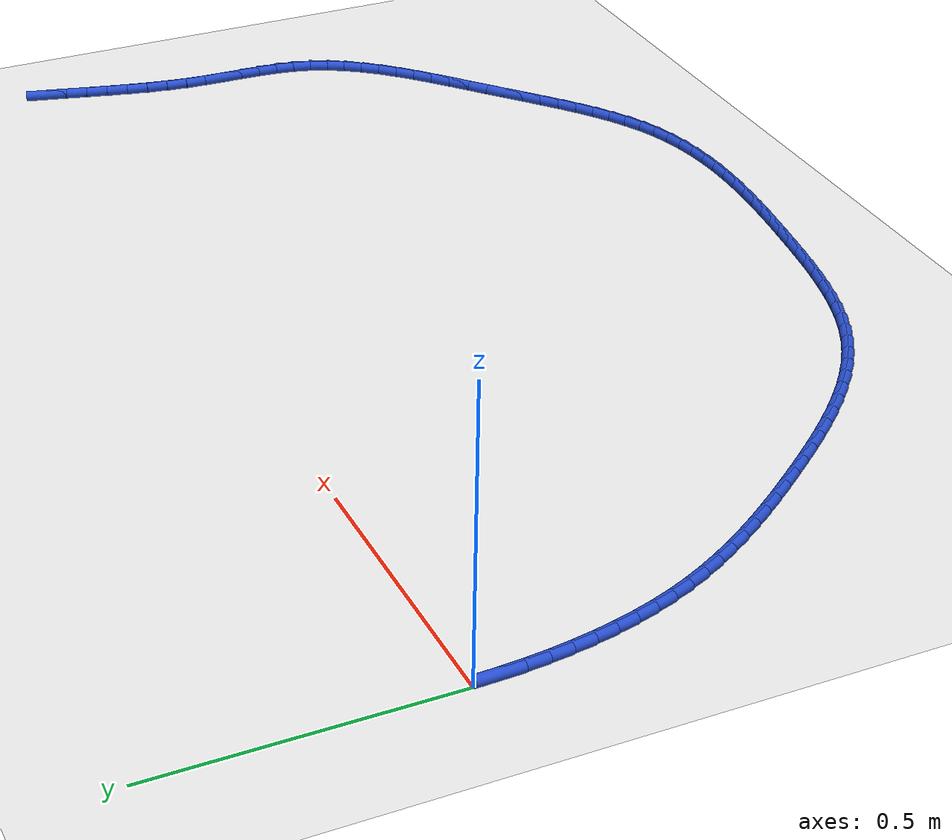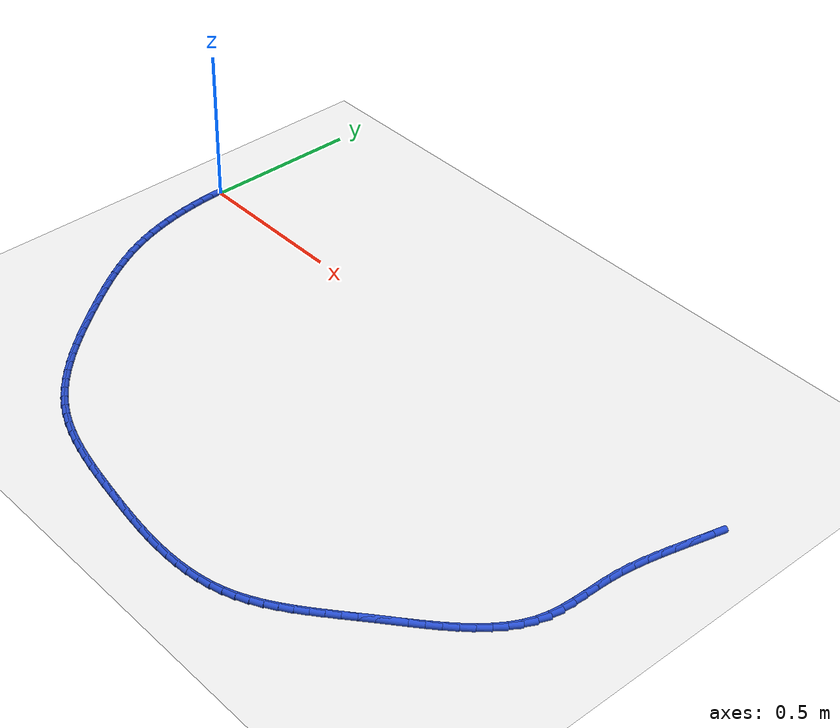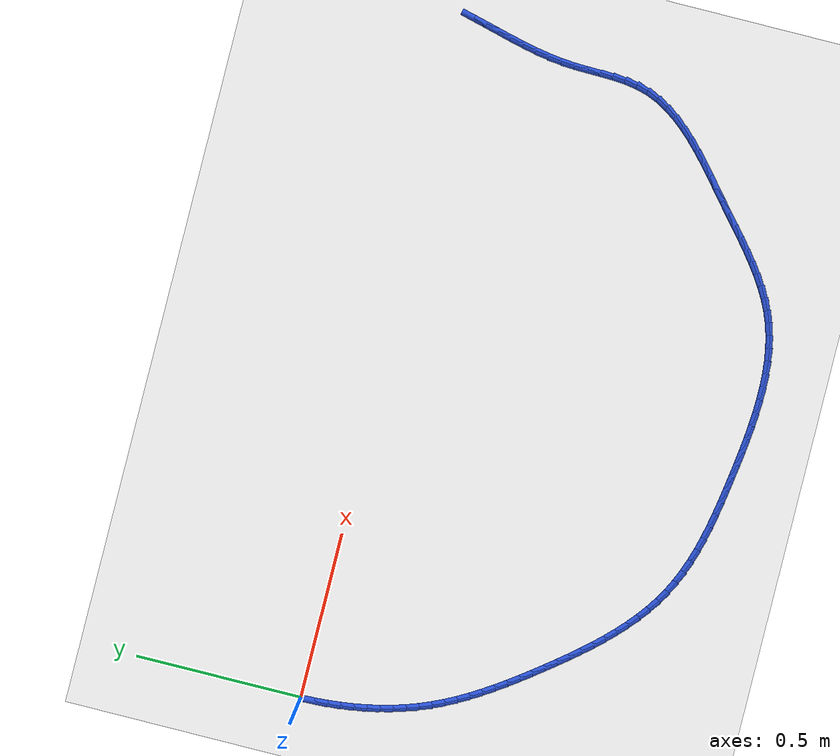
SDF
<sdf version="1.6">
 <world name="default">
  <model name="ground_plane">
   <static>1</static>
   <link name="link">
    <collision name="collision">
     <geometry><plane><normal>0 0 1</normal><size>100 100</size></plane></geometry>
     <surface><friction><ode><mu>100</mu><mu2>50</mu2></ode></friction></surface>
    </collision>
    <visual name="visual">
     <cast_shadows>0</cast_shadows>
     <geometry><plane><normal>0 0 1</normal><size>100 100</size></plane></geometry>
     <material>
      <script><uri>file://media/materials/scripts/gazebo.material</uri><name>Gazebo/WhiteGlow</name></script>
     </material>
    </visual>
   </link>
  </model>
  <model name="line">
   <link name="link_84">
    <pose>2.0732877310090023 -0.002833022383171315 0.01 0 1.57 1.3240365172523032</pose>
    <collision name="collision">
     <geometry><cylinder><radius>0.01</radius><length>0.08</length></cylinder></geometry>
    </collision>
    <visual name="visual">
     <material>
      <script><name>Gazebo/Blue</name><uri>file://media/materials/scripts/gazebo.material</uri></script>
     </material>
     <geometry><cylinder><radius>0.01</radius><length>0.08</length></cylinder></geometry>
    </visual>
   </link>
   <link name="link_85">
    <pose>2.063362151256456 -0.042236925682474405 0.01 0 1.57 1.3186544979273631</pose>
    <collision name="collision">
     <geometry><cylinder><radius>0.01</radius><length>0.08</length></cylinder></geometry>
    </collision>
    <visual name="visual">
     <material>
      <script><name>Gazebo/Blue</name><uri>file://media/materials/scripts/gazebo.material</uri></script>
     </material>
     <geometry><cylinder><radius>0.01</radius><length>0.08</length></cylinder></geometry>
    </visual>
   </link>
   <link name="link_86">
    <pose>2.0531241825197912 -0.08197679067456184 0.01 0 1.57 1.3229760920995042</pose>
    <collision name="collision">
     <geometry><cylinder><radius>0.01</radius><length>0.08</length></cylinder></geometry>
    </collision>
    <visual name="visual">
     <material>
      <script><name>Gazebo/Blue</name><uri>file://media/materials/scripts/gazebo.material</uri></script>
     </material>
     <geometry><cylinder><radius>0.01</radius><length>0.08</length></cylinder></geometry>
    </visual>
   </link>
   <link name="link_87">
    <pose>2.0429988126330025 -0.12199464259582422 0.01 0 1.57 1.3368805387512546</pose>
    <collision name="collision">
     <geometry><cylinder><radius>0.01</radius><length>0.08</length></cylinder></geometry>
    </collision>
    <visual name="visual">
     <material>
      <script><name>Gazebo/Blue</name><uri>file://media/materials/scripts/gazebo.material</uri></script>
     </material>
     <geometry><cylinder><radius>0.01</radius><length>0.08</length></cylinder></geometry>
    </visual>
   </link>
   <link name="link_88">
    <pose>2.033411029430083 -0.1622325066826519 0.01 0 1.57 1.360458365074663</pose>
    <collision name="collision">
     <geometry><cylinder><radius>0.01</radius><length>0.08</length></cylinder></geometry>
    </collision>
    <visual name="visual">
     <material>
      <script><name>Gazebo/Blue</name><uri>file://media/materials/scripts/gazebo.material</uri></script>
     </material>
     <geometry><cylinder><radius>0.01</radius><length>0.08</length></cylinder></geometry>
    </visual>
   </link>
   <link name="link_89">
    <pose>2.0247858207450258 -0.20263240817143618 0.01 0 1.57 1.3939727336642374</pose>
    <collision name="collision">
     <geometry><cylinder><radius>0.01</radius><length>0.08</length></cylinder></geometry>
    </collision>
    <visual name="visual">
     <material>
      <script><name>Gazebo/Blue</name><uri>file://media/materials/scripts/gazebo.material</uri></script>
     </material>
     <geometry><cylinder><radius>0.01</radius><length>0.08</length></cylinder></geometry>
    </visual>
   </link>
   <link name="link_90">
    <pose>2.017548174411825 -0.24313637229856594 0.01 0 1.57 1.43779844050988</pose>
    <collision name="collision">
     <geometry><cylinder><radius>0.01</radius><length>0.08</length></cylinder></geometry>
    </collision>
    <visual name="visual">
     <material>
      <script><name>Gazebo/Blue</name><uri>file://media/materials/scripts/gazebo.material</uri></script>
     </material>
     <geometry><cylinder><radius>0.01</radius><length>0.08</length></cylinder></geometry>
    </visual>
   </link>
   <link name="link_91">
    <pose>2.012123078264474 -0.28368642430043256 0.01 0 1.57 1.4912970462471276</pose>
    <collision name="collision">
     <geometry><cylinder><radius>0.01</radius><length>0.08</length></cylinder></geometry>
    </collision>
    <visual name="visual">
     <material>
      <script><name>Gazebo/Blue</name><uri>file://media/materials/scripts/gazebo.material</uri></script>
     </material>
     <geometry><cylinder><radius>0.01</radius><length>0.08</length></cylinder></geometry>
    </visual>
   </link>
   <link name="link_92">
    <pose>2.008893961093956 -0.324219011020749 0.01 0 1.57 1.535166261567217</pose>
    <collision name="collision">
     <geometry><cylinder><radius>0.01</radius><length>0.08</length></cylinder></geometry>
    </collision>
    <visual name="visual">
     <material>
      <script><name>Gazebo/Blue</name><uri>file://media/materials/scripts/gazebo.material</uri></script>
     </material>
     <geometry><cylinder><radius>0.01</radius><length>0.08</length></cylinder></geometry>
    </visual>
   </link>
   <link name="link_93">
    <pose>2.0074558311229325 -0.36456475108375175 0.01 0 1.57 1.5518130688082306</pose>
    <collision name="collision">
     <geometry><cylinder><radius>0.01</radius><length>0.08</length></cylinder></geometry>
    </collision>
    <visual name="visual">
     <material>
      <script><name>Gazebo/Blue</name><uri>file://media/materials/scripts/gazebo.material</uri></script>
     </material>
     <geometry><cylinder><radius>0.01</radius><length>0.08</length></cylinder></geometry>
    </visual>
   </link>
   <link name="link_94">
    <pose>2.0066984060559636 -0.4044595932854872 0.01 0 1.57 1.539872616497881</pose>
    <collision name="collision">
     <geometry><cylinder><radius>0.01</radius><length>0.08</length></cylinder></geometry>
    </collision>
    <visual name="visual">
     <material>
      <script><name>Gazebo/Blue</name><uri>file://media/materials/scripts/gazebo.material</uri></script>
     </material>
     <geometry><cylinder><radius>0.01</radius><length>0.08</length></cylinder></geometry>
    </visual>
   </link>
   <link name="link_95">
    <pose>2.005486535296399 -0.4436361483964026 0.01 0 1.57 1.497573124553418</pose>
    <collision name="collision">
     <geometry><cylinder><radius>0.01</radius><length>0.08</length></cylinder></geometry>
    </collision>
    <visual name="visual">
     <material>
      <script><name>Gazebo/Blue</name><uri>file://media/materials/scripts/gazebo.material</uri></script>
     </material>
     <geometry><cylinder><radius>0.01</radius><length>0.08</length></cylinder></geometry>
    </visual>
   </link>
   <link name="link_96">
    <pose>2.002685068247591 -0.4818270271869477 0.01 0 1.57 1.4222892040902089</pose>
    <collision name="collision">
     <geometry><cylinder><radius>0.01</radius><length>0.08</length></cylinder></geometry>
    </collision>
    <visual name="visual">
     <material>
      <script><name>Gazebo/Blue</name><uri>file://media/materials/scripts/gazebo.material</uri></script>
     </material>
     <geometry><cylinder><radius>0.01</radius><length>0.08</length></cylinder></geometry>
    </visual>
   </link>
   <link name="link_97">
    <pose>1.9971588543128902 -0.5187648404275712 0.01 0 1.57 1.311973981122183</pose>
    <collision name="collision">
     <geometry><cylinder><radius>0.01</radius><length>0.08</length></cylinder></geometry>
    </collision>
    <visual name="visual">
     <material>
      <script><name>Gazebo/Blue</name><uri>file://media/materials/scripts/gazebo.material</uri></script>
     </material>
     <geometry><cylinder><radius>0.01</radius><length>0.08</length></cylinder></geometry>
    </visual>
   </link>
   <link name="link_98">
    <pose>1.9877811232567795 -0.5541844570091679 0.01 0 1.57 1.1837734969037585</pose>
    <collision name="collision">
     <geometry><cylinder><radius>0.01</radius><length>0.08</length></cylinder></geometry>
    </collision>
    <visual name="visual">
     <material>
      <script><name>Gazebo/Blue</name><uri>file://media/materials/scripts/gazebo.material</uri></script>
     </material>
     <geometry><cylinder><radius>0.01</radius><length>0.08</length></cylinder></geometry>
    </visual>
   </link>
   <link name="link_99">
    <pose>1.9740076975651675 -0.5879777276656915 0.01 0 1.57 1.0682449131188485</pose>
    <collision name="collision">
     <geometry><cylinder><radius>0.01</radius><length>0.08</length></cylinder></geometry>
    </collision>
    <visual name="visual">
     <material>
      <script><name>Gazebo/Blue</name><uri>file://media/materials/scripts/gazebo.material</uri></script>
     </material>
     <geometry><cylinder><radius>0.01</radius><length>0.08</length></cylinder></geometry>
    </visual>
   </link>
   <link name="link_100">
    <pose>1.9562465436832828 -0.6202930619724475 0.01 0 1.57 0.9699566505959543</pose>
    <collision name="collision">
     <geometry><cylinder><radius>0.01</radius><length>0.08</length></cylinder></geometry>
    </collision>
    <visual name="visual">
     <material>
      <script><name>Gazebo/Blue</name><uri>file://media/materials/scripts/gazebo.material</uri></script>
     </material>
     <geometry><cylinder><radius>0.01</radius><length>0.08</length></cylinder></geometry>
    </visual>
   </link>
   <link name="link_101">
    <pose>1.9349935564130705 -0.6513025621376708 0.01 0 1.57 0.8889867673475176</pose>
    <collision name="collision">
     <geometry><cylinder><radius>0.01</radius><length>0.08</length></cylinder></geometry>
    </collision>
    <visual name="visual">
     <material>
      <script><name>Gazebo/Blue</name><uri>file://media/materials/scripts/gazebo.material</uri></script>
     </material>
     <geometry><cylinder><radius>0.01</radius><length>0.08</length></cylinder></geometry>
    </visual>
   </link>
   <link name="link_102">
    <pose>1.910744630556473 -0.6811783303695942 0.01 0 1.57 0.8242762989675925</pose>
    <collision name="collision">
     <geometry><cylinder><radius>0.01</radius><length>0.08</length></cylinder></geometry>
    </collision>
    <visual name="visual">
     <material>
      <script><name>Gazebo/Blue</name><uri>file://media/materials/scripts/gazebo.material</uri></script>
     </material>
     <geometry><cylinder><radius>0.01</radius><length>0.08</length></cylinder></geometry>
    </visual>
   </link>
   <link name="link_103">
    <pose>1.883995660915436 -0.710092468876452 0.01 0 1.57 0.7743484597936146</pose>
    <collision name="collision">
     <geometry><cylinder><radius>0.01</radius><length>0.08</length></cylinder></geometry>
    </collision>
    <visual name="visual">
     <material>
      <script><name>Gazebo/Blue</name><uri>file://media/materials/scripts/gazebo.material</uri></script>
     </material>
     <geometry><cylinder><radius>0.01</radius><length>0.08</length></cylinder></geometry>
    </visual>
   </link>
   <link name="link_104">
    <pose>1.8552425422919014 -0.7382170798664774 0.01 0 1.57 0.7377580065491006</pose>
    <collision name="collision">
     <geometry><cylinder><radius>0.01</radius><length>0.08</length></cylinder></geometry>
    </collision>
    <visual name="visual">
     <material>
      <script><name>Gazebo/Blue</name><uri>file://media/materials/scripts/gazebo.material</uri></script>
     </material>
     <geometry><cylinder><radius>0.01</radius><length>0.08</length></cylinder></geometry>
    </visual>
   </link>
   <link name="link_105">
    <pose>1.8249811694878153 -0.7657242655479037 0.01 0 1.57 0.7133225518185794</pose>
    <collision name="collision">
     <geometry><cylinder><radius>0.01</radius><length>0.08</length></cylinder></geometry>
    </collision>
    <visual name="visual">
     <material>
      <script><name>Gazebo/Blue</name><uri>file://media/materials/scripts/gazebo.material</uri></script>
     </material>
     <geometry><cylinder><radius>0.01</radius><length>0.08</length></cylinder></geometry>
    </visual>
   </link>
   <link name="link_106">
    <pose>1.7937074373051205 -0.7927861281289643 0.01 0 1.57 0.7002231363831721</pose>
    <collision name="collision">
     <geometry><cylinder><radius>0.01</radius><length>0.08</length></cylinder></geometry>
    </collision>
    <visual name="visual">
     <material>
      <script><name>Gazebo/Blue</name><uri>file://media/materials/scripts/gazebo.material</uri></script>
     </material>
     <geometry><cylinder><radius>0.01</radius><length>0.08</length></cylinder></geometry>
    </visual>
   </link>
   <link name="link_107">
    <pose>1.7619172405457613 -0.8195747698178935 0.01 0 1.57 0.6980416809096978</pose>
    <collision name="collision">
     <geometry><cylinder><radius>0.01</radius><length>0.08</length></cylinder></geometry>
    </collision>
    <visual name="visual">
     <material>
      <script><name>Gazebo/Blue</name><uri>file://media/materials/scripts/gazebo.material</uri></script>
     </material>
     <geometry><cylinder><radius>0.01</radius><length>0.08</length></cylinder></geometry>
    </visual>
   </link>
   <link name="link_108">
    <pose>1.7301064740116825 -0.8462622928229242 0.01 0 1.57 0.7048841720123856</pose>
    <collision name="collision">
     <geometry><cylinder><radius>0.01</radius><length>0.08</length></cylinder></geometry>
    </collision>
    <visual name="visual">
     <material>
      <script><name>Gazebo/Blue</name><uri>file://media/materials/scripts/gazebo.material</uri></script>
     </material>
     <geometry><cylinder><radius>0.01</radius><length>0.08</length></cylinder></geometry>
    </visual>
   </link>
   <link name="link_109">
    <pose>1.6987061042256055 -0.872973713953395 0.01 0 1.57 0.708212111800988</pose>
    <collision name="collision">
     <geometry><cylinder><radius>0.01</radius><length>0.08</length></cylinder></geometry>
    </collision>
    <visual name="visual">
     <material>
      <script><name>Gazebo/Blue</name><uri>file://media/materials/scripts/gazebo.material</uri></script>
     </material>
     <geometry><cylinder><radius>0.01</radius><length>0.08</length></cylinder></geometry>
    </visual>
   </link>
   <link name="link_110">
    <pose>1.6677115626940346 -0.8995182039771713 0.01 0 1.57 0.7026099904936385</pose>
    <collision name="collision">
     <geometry><cylinder><radius>0.01</radius><length>0.08</length></cylinder></geometry>
    </collision>
    <visual name="visual">
     <material>
      <script><name>Gazebo/Blue</name><uri>file://media/materials/scripts/gazebo.material</uri></script>
     </material>
     <geometry><cylinder><radius>0.01</radius><length>0.08</length></cylinder></geometry>
    </visual>
   </link>
   <link name="link_111">
    <pose>1.6369391617997764 -0.9255750380990387 0.01 0 1.57 0.6877073226427701</pose>
    <collision name="collision">
     <geometry><cylinder><radius>0.01</radius><length>0.08</length></cylinder></geometry>
    </collision>
    <visual name="visual">
     <material>
      <script><name>Gazebo/Blue</name><uri>file://media/materials/scripts/gazebo.material</uri></script>
     </material>
     <geometry><cylinder><radius>0.01</radius><length>0.08</length></cylinder></geometry>
    </visual>
   </link>
   <link name="link_112">
    <pose>1.6062046617298567 -0.9508230910764173 0.01 0 1.57 0.6630519780283114</pose>
    <collision name="collision">
     <geometry><cylinder><radius>0.01</radius><length>0.08</length></cylinder></geometry>
    </collision>
    <visual name="visual">
     <material>
      <script><name>Gazebo/Blue</name><uri>file://media/materials/scripts/gazebo.material</uri></script>
     </material>
     <geometry><cylinder><radius>0.01</radius><length>0.08</length></cylinder></geometry>
    </visual>
   </link>
   <link name="link_113">
    <pose>1.5753238226713033 -0.9749412376667261 0.01 0 1.57 0.6281233237968963</pose>
    <collision name="collision">
     <geometry><cylinder><radius>0.01</radius><length>0.08</length></cylinder></geometry>
    </collision>
    <visual name="visual">
     <material>
      <script><name>Gazebo/Blue</name><uri>file://media/materials/scripts/gazebo.material</uri></script>
     </material>
     <geometry><cylinder><radius>0.01</radius><length>0.08</length></cylinder></geometry>
    </visual>
   </link>
   <link name="link_114">
    <pose>1.5441124048111448 -0.9976083526273856 0.01 0 1.57 0.5823984686956617</pose>
    <collision name="collision">
     <geometry><cylinder><radius>0.01</radius><length>0.08</length></cylinder></geometry>
    </collision>
    <visual name="visual">
     <material>
      <script><name>Gazebo/Blue</name><uri>file://media/materials/scripts/gazebo.material</uri></script>
     </material>
     <geometry><cylinder><radius>0.01</radius><length>0.08</length></cylinder></geometry>
    </visual>
   </link>
   <link name="link_115">
    <pose>1.512386168336408 -1.0185033107158155 0.01 0 1.57 0.5254685145553025</pose>
    <collision name="collision">
     <geometry><cylinder><radius>0.01</radius><length>0.08</length></cylinder></geometry>
    </collision>
    <visual name="visual">
     <material>
      <script><name>Gazebo/Blue</name><uri>file://media/materials/scripts/gazebo.material</uri></script>
     </material>
     <geometry><cylinder><radius>0.01</radius><length>0.08</length></cylinder></geometry>
    </visual>
   </link>
   <link name="link_116">
    <pose>1.4799608734341212 -1.037304986689434 0.01 0 1.57 0.45721363456293435</pose>
    <collision name="collision">
     <geometry><cylinder><radius>0.01</radius><length>0.08</length></cylinder></geometry>
    </collision>
    <visual name="visual">
     <material>
      <script><name>Gazebo/Blue</name><uri>file://media/materials/scripts/gazebo.material</uri></script>
     </material>
     <geometry><cylinder><radius>0.01</radius><length>0.08</length></cylinder></geometry>
    </visual>
   </link>
   <link name="link_117">
    <pose>1.446652280291312 -1.0536922553056622 0.01 0 1.57 0.37829900537733296</pose>
    <collision name="collision">
     <geometry><cylinder><radius>0.01</radius><length>0.08</length></cylinder></geometry>
    </collision>
    <visual name="visual">
     <material>
      <script><name>Gazebo/Blue</name><uri>file://media/materials/scripts/gazebo.material</uri></script>
     </material>
     <geometry><cylinder><radius>0.01</radius><length>0.08</length></cylinder></geometry>
    </visual>
   </link>
   <link name="link_118">
    <pose>1.412281024324226 -1.0673528258278595 0.01 0 1.57 0.29719963356065365</pose>
    <collision name="collision">
     <geometry><cylinder><radius>0.01</radius><length>0.08</length></cylinder></geometry>
    </collision>
    <visual name="visual">
     <material>
      <script><name>Gazebo/Blue</name><uri>file://media/materials/scripts/gazebo.material</uri></script>
     </material>
     <geometry><cylinder><radius>0.01</radius><length>0.08</length></cylinder></geometry>
    </visual>
   </link>
   <link name="link_119">
    <pose>1.3768026162848819 -1.0782188179669492 0.01 0 1.57 0.2230106963993187</pose>
    <collision name="collision">
     <geometry><cylinder><radius>0.01</radius><length>0.08</length></cylinder></geometry>
    </collision>
    <visual name="visual">
     <material>
      <script><name>Gazebo/Blue</name><uri>file://media/materials/scripts/gazebo.material</uri></script>
     </material>
     <geometry><cylinder><radius>0.01</radius><length>0.08</length></cylinder></geometry>
    </visual>
   </link>
   <link name="link_120">
    <pose>1.3403214371170822 -1.0864921222558823 0.01 0 1.57 0.15648712992326655</pose>
    <collision name="collision">
     <geometry><cylinder><radius>0.01</radius><length>0.08</length></cylinder></geometry>
    </collision>
    <visual name="visual">
     <material>
      <script><name>Gazebo/Blue</name><uri>file://media/materials/scripts/gazebo.material</uri></script>
     </material>
     <geometry><cylinder><radius>0.01</radius><length>0.08</length></cylinder></geometry>
    </visual>
   </link>
   <link name="link_121">
    <pose>1.3029495505195128 -1.0923885513101663 0.01 0 1.57 0.09760016672799124</pose>
    <collision name="collision">
     <geometry><cylinder><radius>0.01</radius><length>0.08</length></cylinder></geometry>
    </collision>
    <visual name="visual">
     <material>
      <script><name>Gazebo/Blue</name><uri>file://media/materials/scripts/gazebo.material</uri></script>
     </material>
     <geometry><cylinder><radius>0.01</radius><length>0.08</length></cylinder></geometry>
    </visual>
   </link>
   <link name="link_122">
    <pose>1.2647990201908614 -1.0961239177453102 0.01 0 1.57 0.046084033284451625</pose>
    <collision name="collision">
     <geometry><cylinder><radius>0.01</radius><length>0.08</length></cylinder></geometry>
    </collision>
    <visual name="visual">
     <material>
      <script><name>Gazebo/Blue</name><uri>file://media/materials/scripts/gazebo.material</uri></script>
     </material>
     <geometry><cylinder><radius>0.01</radius><length>0.08</length></cylinder></geometry>
    </visual>
   </link>
   <link name="link_123">
    <pose>1.225981909829814 -1.0979140341768217 0.01 0 1.57 0.0015411858853603584</pose>
    <collision name="collision">
     <geometry><cylinder><radius>0.01</radius><length>0.08</length></cylinder></geometry>
    </collision>
    <visual name="visual">
     <material>
      <script><name>Gazebo/Blue</name><uri>file://media/materials/scripts/gazebo.material</uri></script>
     </material>
     <geometry><cylinder><radius>0.01</radius><length>0.08</length></cylinder></geometry>
    </visual>
   </link>
   <link name="link_124">
    <pose>1.186610283135057 -1.09797471322021 0.01 0 1.57 -0.0364770773981496</pose>
    <collision name="collision">
     <geometry><cylinder><radius>0.01</radius><length>0.08</length></cylinder></geometry>
    </collision>
    <visual name="visual">
     <material>
      <script><name>Gazebo/Blue</name><uri>file://media/materials/scripts/gazebo.material</uri></script>
     </material>
     <geometry><cylinder><radius>0.01</radius><length>0.08</length></cylinder></geometry>
    </visual>
   </link>
   <link name="link_125">
    <pose>1.1467962038052766 -1.0965217674909828 0.01 0 1.57 -0.06841452834494986</pose>
    <collision name="collision">
     <geometry><cylinder><radius>0.01</radius><length>0.08</length></cylinder></geometry>
    </collision>
    <visual name="visual">
     <material>
      <script><name>Gazebo/Blue</name><uri>file://media/materials/scripts/gazebo.material</uri></script>
     </material>
     <geometry><cylinder><radius>0.01</radius><length>0.08</length></cylinder></geometry>
    </visual>
   </link>
   <link name="link_126">
    <pose>1.106651735539159 -1.0937710096046491 0.01 0 1.57 -0.09467380921705981</pose>
    <collision name="collision">
     <geometry><cylinder><radius>0.01</radius><length>0.08</length></cylinder></geometry>
    </collision>
    <visual name="visual">
     <material>
      <script><name>Gazebo/Blue</name><uri>file://media/materials/scripts/gazebo.material</uri></script>
     </material>
     <geometry><cylinder><radius>0.01</radius><length>0.08</length></cylinder></geometry>
    </visual>
   </link>
   <link name="link_127">
    <pose>1.0662889420353912 -1.089938252176717 0.01 0 1.57 -0.11559440856584909</pose>
    <collision name="collision">
     <geometry><cylinder><radius>0.01</radius><length>0.08</length></cylinder></geometry>
    </collision>
    <visual name="visual">
     <material>
      <script><name>Gazebo/Blue</name><uri>file://media/materials/scripts/gazebo.material</uri></script>
     </material>
     <geometry><cylinder><radius>0.01</radius><length>0.08</length></cylinder></geometry>
    </visual>
   </link>
   <link name="link_128">
    <pose>1.02581988699266 -1.085239307822695 0.01 0 1.57 -0.13143969165751426</pose>
    <collision name="collision">
     <geometry><cylinder><radius>0.01</radius><length>0.08</length></cylinder></geometry>
    </collision>
    <visual name="visual">
     <material>
      <script><name>Gazebo/Blue</name><uri>file://media/materials/scripts/gazebo.material</uri></script>
     </material>
     <geometry><cylinder><radius>0.01</radius><length>0.08</length></cylinder></geometry>
    </visual>
   </link>
   <link name="link_129">
    <pose>0.9853566341096512 -1.079889989158091 0.01 0 1.57 -0.14238898624802543</pose>
    <collision name="collision">
     <geometry><cylinder><radius>0.01</radius><length>0.08</length></cylinder></geometry>
    </collision>
    <visual name="visual">
     <material>
      <script><name>Gazebo/Blue</name><uri>file://media/materials/scripts/gazebo.material</uri></script>
     </material>
     <geometry><cylinder><radius>0.01</radius><length>0.08</length></cylinder></geometry>
    </visual>
   </link>
   <link name="link_130">
    <pose>0.9450112470850519 -1.0741061087984143 0.01 0 1.57 -0.14940088666014317</pose>
    <collision name="collision">
     <geometry><cylinder><radius>0.01</radius><length>0.08</length></cylinder></geometry>
    </collision>
    <visual name="visual">
     <material>
      <script><name>Gazebo/Blue</name><uri>file://media/materials/scripts/gazebo.material</uri></script>
     </material>
     <geometry><cylinder><radius>0.01</radius><length>0.08</length></cylinder></geometry>
    </visual>
   </link>
   <link name="link_131">
    <pose>0.9048945368972756 -1.068067642281353 0.01 0 1.57 -0.15915915887786364</pose>
    <collision name="collision">
     <geometry><cylinder><radius>0.01</radius><length>0.08</length></cylinder></geometry>
    </collision>
    <visual name="visual">
     <material>
      <script><name>Gazebo/Blue</name><uri>file://media/materials/scripts/gazebo.material</uri></script>
     </material>
     <geometry><cylinder><radius>0.01</radius><length>0.08</length></cylinder></geometry>
    </visual>
   </link>
   <link name="link_132">
    <pose>0.8651077585826222 -1.0616811944257203 0.01 0 1.57 -0.1748663669154542</pose>
    <collision name="collision">
     <geometry><cylinder><radius>0.01</radius><length>0.08</length></cylinder></geometry>
    </collision>
    <visual name="visual">
     <material>
      <script><name>Gazebo/Blue</name><uri>file://media/materials/scripts/gazebo.material</uri></script>
     </material>
     <geometry><cylinder><radius>0.01</radius><length>0.08</length></cylinder></geometry>
    </visual>
   </link>
   <link name="link_133">
    <pose>0.8257477649055384 -1.054727432470758 0.01 0 1.57 -0.1967468920736733</pose>
    <collision name="collision">
     <geometry><cylinder><radius>0.01</radius><length>0.08</length></cylinder></geometry>
    </collision>
    <visual name="visual">
     <material>
      <script><name>Gazebo/Blue</name><uri>file://media/materials/scripts/gazebo.material</uri></script>
     </material>
     <geometry><cylinder><radius>0.01</radius><length>0.08</length></cylinder></geometry>
    </visual>
   </link>
   <link name="link_134">
    <pose>0.786911385177066 -1.0469863527146104 0.01 0 1.57 -0.22504263370241234</pose>
    <collision name="collision">
     <geometry><cylinder><radius>0.01</radius><length>0.08</length></cylinder></geometry>
    </collision>
    <visual name="visual">
     <material>
      <script><name>Gazebo/Blue</name><uri>file://media/materials/scripts/gazebo.material</uri></script>
     </material>
     <geometry><cylinder><radius>0.01</radius><length>0.08</length></cylinder></geometry>
    </visual>
   </link>
   <link name="link_135">
    <pose>0.7486954487082473 -1.038237951455421 0.01 0 1.57 -0.260006826019972</pose>
    <collision name="collision">
     <geometry><cylinder><radius>0.01</radius><length>0.08</length></cylinder></geometry>
    </collision>
    <visual name="visual">
     <material>
      <script><name>Gazebo/Blue</name><uri>file://media/materials/scripts/gazebo.material</uri></script>
     </material>
     <geometry><cylinder><radius>0.01</radius><length>0.08</length></cylinder></geometry>
    </visual>
   </link>
   <link name="link_136">
    <pose>0.7111967848101233 -1.0282622249913322 0.01 0 1.57 -0.3018695661856194</pose>
    <collision name="collision">
     <geometry><cylinder><radius>0.01</radius><length>0.08</length></cylinder></geometry>
    </collision>
    <visual name="visual">
     <material>
      <script><name>Gazebo/Blue</name><uri>file://media/materials/scripts/gazebo.material</uri></script>
     </material>
     <geometry><cylinder><radius>0.01</radius><length>0.08</length></cylinder></geometry>
    </visual>
   </link>
   <link name="link_137">
    <pose>0.6745122227937369 -1.016839169620488 0.01 0 1.57 -0.3507889465933068</pose>
    <collision name="collision">
     <geometry><cylinder><radius>0.01</radius><length>0.08</length></cylinder></geometry>
    </collision>
    <visual name="visual">
     <material>
      <script><name>Gazebo/Blue</name><uri>file://media/materials/scripts/gazebo.material</uri></script>
     </material>
     <geometry><cylinder><radius>0.01</radius><length>0.08</length></cylinder></geometry>
    </visual>
   </link>
   <link name="link_138">
    <pose>0.63873859197013 -1.0037487816410318 0.01 0 1.57 -0.40678727461697783</pose>
    <collision name="collision">
     <geometry><cylinder><radius>0.01</radius><length>0.08</length></cylinder></geometry>
    </collision>
    <visual name="visual">
     <material>
      <script><name>Gazebo/Blue</name><uri>file://media/materials/scripts/gazebo.material</uri></script>
     </material>
     <geometry><cylinder><radius>0.01</radius><length>0.08</length></cylinder></geometry>
    </visual>
   </link>
   <link name="link_139">
    <pose>0.6039727216503443 -0.9887710573511067 0.01 0 1.57 -0.4696759877989372</pose>
    <collision name="collision">
     <geometry><cylinder><radius>0.01</radius><length>0.08</length></cylinder></geometry>
    </collision>
    <visual name="visual">
     <material>
      <script><name>Gazebo/Blue</name><uri>file://media/materials/scripts/gazebo.material</uri></script>
     </material>
     <geometry><cylinder><radius>0.01</radius><length>0.08</length></cylinder></geometry>
    </visual>
   </link>
   <link name="link_140">
    <pose>0.5703114410111614 -0.9716859933802482 0.01 0 1.57 -0.5368962757555107</pose>
    <collision name="collision">
     <geometry><cylinder><radius>0.01</radius><length>0.08</length></cylinder></geometry>
    </collision>
    <visual name="visual">
     <material>
      <script><name>Gazebo/Blue</name><uri>file://media/materials/scripts/gazebo.material</uri></script>
     </material>
     <geometry><cylinder><radius>0.01</radius><length>0.08</length></cylinder></geometry>
    </visual>
   </link>
   <link name="link_141">
    <pose>0.5378216471930634 -0.9523474669524886 0.01 0 1.57 -0.5999771993615607</pose>
    <collision name="collision">
     <geometry><cylinder><radius>0.01</radius><length>0.08</length></cylinder></geometry>
    </collision>
    <visual name="visual">
     <material>
      <script><name>Gazebo/Blue</name><uri>file://media/materials/scripts/gazebo.material</uri></script>
     </material>
     <geometry><cylinder><radius>0.01</radius><length>0.08</length></cylinder></geometry>
    </visual>
   </link>
   <link name="link_142">
    <pose>0.5064563812264615 -0.9308903838532023 0.01 0 1.57 -0.6568318723783236</pose>
    <collision name="collision">
     <geometry><cylinder><radius>0.01</radius><length>0.08</length></cylinder></geometry>
    </collision>
    <visual name="visual">
     <material>
      <script><name>Gazebo/Blue</name><uri>file://media/materials/scripts/gazebo.material</uri></script>
     </material>
     <geometry><cylinder><radius>0.01</radius><length>0.08</length></cylinder></geometry>
    </visual>
   </link>
   <link name="link_143">
    <pose>0.47614161680048145 -0.9075164595978381 0.01 0 1.57 -0.7074844258914516</pose>
    <collision name="collision">
     <geometry><cylinder><radius>0.01</radius><length>0.08</length></cylinder></geometry>
    </collision>
    <visual name="visual">
     <material>
      <script><name>Gazebo/Blue</name><uri>file://media/materials/scripts/gazebo.material</uri></script>
     </material>
     <geometry><cylinder><radius>0.01</radius><length>0.08</length></cylinder></geometry>
    </visual>
   </link>
   <link name="link_144">
    <pose>0.4468033276042472 -0.8824274097018447 0.01 0 1.57 -0.7520994863370226</pose>
    <collision name="collision">
     <geometry><cylinder><radius>0.01</radius><length>0.08</length></cylinder></geometry>
    </collision>
    <visual name="visual">
     <material>
      <script><name>Gazebo/Blue</name><uri>file://media/materials/scripts/gazebo.material</uri></script>
     </material>
     <geometry><cylinder><radius>0.01</radius><length>0.08</length></cylinder></geometry>
    </visual>
   </link>
   <link name="link_145">
    <pose>0.41836748732688345 -0.8558249496806718 0.01 0 1.57 -0.7909227519163463</pose>
    <collision name="collision">
     <geometry><cylinder><radius>0.01</radius><length>0.08</length></cylinder></geometry>
    </collision>
    <visual name="visual">
     <material>
      <script><name>Gazebo/Blue</name><uri>file://media/materials/scripts/gazebo.material</uri></script>
     </material>
     <geometry><cylinder><radius>0.01</radius><length>0.08</length></cylinder></geometry>
    </visual>
   </link>
   <link name="link_146">
    <pose>0.3907600696575145 -0.8279107950497676 0.01 0 1.57 -0.8242337259484697</pose>
    <collision name="collision">
     <geometry><cylinder><radius>0.01</radius><length>0.08</length></cylinder></geometry>
    </collision>
    <visual name="visual">
     <material>
      <script><name>Gazebo/Blue</name><uri>file://media/materials/scripts/gazebo.material</uri></script>
     </material>
     <geometry><cylinder><radius>0.01</radius><length>0.08</length></cylinder></geometry>
    </visual>
   </link>
   <link name="link_147">
    <pose>0.3639070482852644 -0.7988866613245812 0.01 0 1.57 -0.8523107348987696</pose>
    <collision name="collision">
     <geometry><cylinder><radius>0.01</radius><length>0.08</length></cylinder></geometry>
    </collision>
    <visual name="visual">
     <material>
      <script><name>Gazebo/Blue</name><uri>file://media/materials/scripts/gazebo.material</uri></script>
     </material>
     <geometry><cylinder><radius>0.01</radius><length>0.08</length></cylinder></geometry>
    </visual>
   </link>
   <link name="link_148">
    <pose>0.3377343968992588 -0.7689542640205623 0.01 0 1.57 -0.8754063275600069</pose>
    <collision name="collision">
     <geometry><cylinder><radius>0.01</radius><length>0.08</length></cylinder></geometry>
    </collision>
    <visual name="visual">
     <material>
      <script><name>Gazebo/Blue</name><uri>file://media/materials/scripts/gazebo.material</uri></script>
     </material>
     <geometry><cylinder><radius>0.01</radius><length>0.08</length></cylinder></geometry>
    </visual>
   </link>
   <link name="link_149">
    <pose>0.31216808918862166 -0.7383153186531597 0.01 0 1.57 -0.8937304765409064</pose>
    <collision name="collision">
     <geometry><cylinder><radius>0.01</radius><length>0.08</length></cylinder></geometry>
    </collision>
    <visual name="visual">
     <material>
      <script><name>Gazebo/Blue</name><uri>file://media/materials/scripts/gazebo.material</uri></script>
     </material>
     <geometry><cylinder><radius>0.01</radius><length>0.08</length></cylinder></geometry>
    </visual>
   </link>
   <link name="link_150">
    <pose>0.2871340988424777 -0.7071715407378221 0.01 0 1.57 -0.907439076839174</pose>
    <collision name="collision">
     <geometry><cylinder><radius>0.01</radius><length>0.08</length></cylinder></geometry>
    </collision>
    <visual name="visual">
     <material>
      <script><name>Gazebo/Blue</name><uri>file://media/materials/scripts/gazebo.material</uri></script>
     </material>
     <geometry><cylinder><radius>0.01</radius><length>0.08</length></cylinder></geometry>
    </visual>
   </link>
   <link name="link_151">
    <pose>0.2625583995499512 -0.6757246457899988 0.01 0 1.57 -0.9177808079445519</pose>
    <collision name="collision">
     <geometry><cylinder><radius>0.01</radius><length>0.08</length></cylinder></geometry>
    </collision>
    <visual name="visual">
     <material>
      <script><name>Gazebo/Blue</name><uri>file://media/materials/scripts/gazebo.material</uri></script>
     </material>
     <geometry><cylinder><radius>0.01</radius><length>0.08</length></cylinder></geometry>
    </visual>
   </link>
   <link name="link_152">
    <pose>0.23839641048828997 -0.6441392549545676 0.01 0 1.57 -0.930418989539588</pose>
    <collision name="collision">
     <geometry><cylinder><radius>0.01</radius><length>0.08</length></cylinder></geometry>
    </collision>
    <visual name="visual">
     <material>
      <script><name>Gazebo/Blue</name><uri>file://media/materials/scripts/gazebo.material</uri></script>
     </material>
     <geometry><cylinder><radius>0.01</radius><length>0.08</length></cylinder></geometry>
    </visual>
   </link>
   <link name="link_153">
    <pose>0.214746476477565 -0.6123999367742248 0.01 0 1.57 -0.9471297300446468</pose>
    <collision name="collision">
     <geometry><cylinder><radius>0.01</radius><length>0.08</length></cylinder></geometry>
    </collision>
    <visual name="visual">
     <material>
      <script><name>Gazebo/Blue</name><uri>file://media/materials/scripts/gazebo.material</uri></script>
     </material>
     <geometry><cylinder><radius>0.01</radius><length>0.08</length></cylinder></geometry>
    </visual>
   </link>
   <link name="link_154">
    <pose>0.19175024639938745 -0.580436706887018 0.01 0 1.57 -0.9680021376579215</pose>
    <collision name="collision">
     <geometry><cylinder><radius>0.01</radius><length>0.08</length></cylinder></geometry>
    </collision>
    <visual name="visual">
     <material>
      <script><name>Gazebo/Blue</name><uri>file://media/materials/scripts/gazebo.material</uri></script>
     </material>
     <geometry><cylinder><radius>0.01</radius><length>0.08</length></cylinder></geometry>
    </visual>
   </link>
   <link name="link_155">
    <pose>0.16954937871093628 -0.5481795688680351 0.01 0 1.57 -0.9931255455005475</pose>
    <collision name="collision">
     <geometry><cylinder><radius>0.01</radius><length>0.08</length></cylinder></geometry>
    </collision>
    <visual name="visual">
     <material>
      <script><name>Gazebo/Blue</name><uri>file://media/materials/scripts/gazebo.material</uri></script>
     </material>
     <geometry><cylinder><radius>0.01</radius><length>0.08</length></cylinder></geometry>
    </visual>
   </link>
   <link name="link_156">
    <pose>0.1482855318693906 -0.515558526292364 0.01 0 1.57 -1.022579060045296</pose>
    <collision name="collision">
     <geometry><cylinder><radius>0.01</radius><length>0.08</length></cylinder></geometry>
    </collision>
    <visual name="visual">
     <material>
      <script><name>Gazebo/Blue</name><uri>file://media/materials/scripts/gazebo.material</uri></script>
     </material>
     <geometry><cylinder><radius>0.01</radius><length>0.08</length></cylinder></geometry>
    </visual>
   </link>
   <link name="link_157">
    <pose>0.1281003643319297 -0.48250358273509286 0.01 0 1.57 -1.0564175274409031</pose>
    <collision name="collision">
     <geometry><cylinder><radius>0.01</radius><length>0.08</length></cylinder></geometry>
    </collision>
    <visual name="visual">
     <material>
      <script><name>Gazebo/Blue</name><uri>file://media/materials/scripts/gazebo.material</uri></script>
     </material>
     <geometry><cylinder><radius>0.01</radius><length>0.08</length></cylinder></geometry>
    </visual>
   </link>
   <link name="link_158">
    <pose>0.10913553455573242 -0.4489447417713089 0.01 0 1.57 -1.0946542763275526</pose>
    <collision name="collision">
     <geometry><cylinder><radius>0.01</radius><length>0.08</length></cylinder></geometry>
    </collision>
    <visual name="visual">
     <material>
      <script><name>Gazebo/Blue</name><uri>file://media/materials/scripts/gazebo.material</uri></script>
     </material>
     <geometry><cylinder><radius>0.01</radius><length>0.08</length></cylinder></geometry>
    </visual>
   </link>
   <link name="link_159">
    <pose>0.09153270099797887 -0.4148120069761019 0.01 0 1.57 -1.1372411391948858</pose>
    <collision name="collision">
     <geometry><cylinder><radius>0.01</radius><length>0.08</length></cylinder></geometry>
    </collision>
    <visual name="visual">
     <material>
      <script><name>Gazebo/Blue</name><uri>file://media/materials/scripts/gazebo.material</uri></script>
     </material>
     <geometry><cylinder><radius>0.01</radius><length>0.08</length></cylinder></geometry>
    </visual>
   </link>
   <link name="link_160">
    <pose>0.07543352211584783 -0.38003538192455893 0.01 0 1.57 -1.183942479996839</pose>
    <collision name="collision">
     <geometry><cylinder><radius>0.01</radius><length>0.08</length></cylinder></geometry>
    </collision>
    <visual name="visual">
     <material>
      <script><name>Gazebo/Blue</name><uri>file://media/materials/scripts/gazebo.material</uri></script>
     </material>
     <geometry><cylinder><radius>0.01</radius><length>0.08</length></cylinder></geometry>
    </visual>
   </link>
   <link name="link_161">
    <pose>0.06097624119564014 -0.34454710743844885 0.01 0 1.57 -1.2317534528110128</pose>
    <collision name="collision">
     <geometry><cylinder><radius>0.01</radius><length>0.08</length></cylinder></geometry>
    </collision>
    <visual name="visual">
     <material>
      <script><name>Gazebo/Blue</name><uri>file://media/materials/scripts/gazebo.material</uri></script>
     </material>
     <geometry><cylinder><radius>0.01</radius><length>0.08</length></cylinder></geometry>
    </visual>
   </link>
   <link name="link_162">
    <pose>0.048207280292083834 -0.30833957557438607 0.01 0 1.57 -1.2775143844239603</pose>
    <collision name="collision">
     <geometry><cylinder><radius>0.01</radius><length>0.08</length></cylinder></geometry>
    </collision>
    <visual name="visual">
     <material>
      <script><name>Gazebo/Blue</name><uri>file://media/materials/scripts/gazebo.material</uri></script>
     </material>
     <geometry><cylinder><radius>0.01</radius><length>0.08</length></cylinder></geometry>
    </visual>
   </link>
   <link name="link_163">
    <pose>0.037073199003493075 -0.27147059735543844 0.01 0 1.57 -1.3210423621431033</pose>
    <collision name="collision">
     <geometry><cylinder><radius>0.01</radius><length>0.08</length></cylinder></geometry>
    </collision>
    <visual name="visual">
     <material>
      <script><name>Gazebo/Blue</name><uri>file://media/materials/scripts/gazebo.material</uri></script>
     </material>
     <geometry><cylinder><radius>0.01</radius><length>0.08</length></cylinder></geometry>
    </visual>
   </link>
   <link name="link_164">
    <pose>0.027515529958411146 -0.23400127692582084 0.01 0 1.57 -1.3623449040986944</pose>
    <collision name="collision">
     <geometry><cylinder><radius>0.01</radius><length>0.08</length></cylinder></geometry>
    </collision>
    <visual name="visual">
     <material>
      <script><name>Gazebo/Blue</name><uri>file://media/materials/scripts/gazebo.material</uri></script>
     </material>
     <geometry><cylinder><radius>0.01</radius><length>0.08</length></cylinder></geometry>
    </visual>
   </link>
   <link name="link_165">
    <pose>0.01947580578538067 -0.1959927184297464 0.01 0 1.57 -1.4014591015132158</pose>
    <collision name="collision">
     <geometry><cylinder><radius>0.01</radius><length>0.08</length></cylinder></geometry>
    </collision>
    <visual name="visual">
     <material>
      <script><name>Gazebo/Blue</name><uri>file://media/materials/scripts/gazebo.material</uri></script>
     </material>
     <geometry><cylinder><radius>0.01</radius><length>0.08</length></cylinder></geometry>
    </visual>
   </link>
   <link name="link_166">
    <pose>0.012895559112944486 -0.15750602601142868 0.01 0 1.57 -1.4384449854018817</pose>
    <collision name="collision">
     <geometry><cylinder><radius>0.01</radius><length>0.08</length></cylinder></geometry>
    </collision>
    <visual name="visual">
     <material>
      <script><name>Gazebo/Blue</name><uri>file://media/materials/scripts/gazebo.material</uri></script>
     </material>
     <geometry><cylinder><radius>0.01</radius><length>0.08</length></cylinder></geometry>
    </visual>
   </link>
   <link name="link_167">
    <pose>0.007716322569645474 -0.11860230381508163 0.01 0 1.57 -1.4733795253795279</pose>
    <collision name="collision">
     <geometry><cylinder><radius>0.01</radius><length>0.08</length></cylinder></geometry>
    </collision>
    <visual name="visual">
     <material>
      <script><name>Gazebo/Blue</name><uri>file://media/materials/scripts/gazebo.material</uri></script>
     </material>
     <geometry><cylinder><radius>0.01</radius><length>0.08</length></cylinder></geometry>
    </visual>
   </link>
   <link name="link_168">
    <pose>0.0038796287840264223 -0.07934265598491799 0.01 0 1.57 -1.5063514317744848</pose>
    <collision name="collision">
     <geometry><cylinder><radius>0.01</radius><length>0.08</length></cylinder></geometry>
    </collision>
    <visual name="visual">
     <material>
      <script><name>Gazebo/Blue</name><uri>file://media/materials/scripts/gazebo.material</uri></script>
     </material>
     <geometry><cylinder><radius>0.01</radius><length>0.08</length></cylinder></geometry>
    </visual>
   </link>
   <link name="link_169">
    <pose>0.0013270103846303406 -0.03978818666515313 0.01 0 1.57 -1.5374568159535758</pose>
    <collision name="collision">
     <geometry><cylinder><radius>0.01</radius><length>0.08</length></cylinder></geometry>
    </collision>
    <visual name="visual">
     <material>
      <script><name>Gazebo/Blue</name><uri>file://media/materials/scripts/gazebo.material</uri></script>
     </material>
     <geometry><cylinder><radius>0.01</radius><length>0.08</length></cylinder></geometry>
    </visual>
   </link>
  </model>
 </world>
</sdf>
